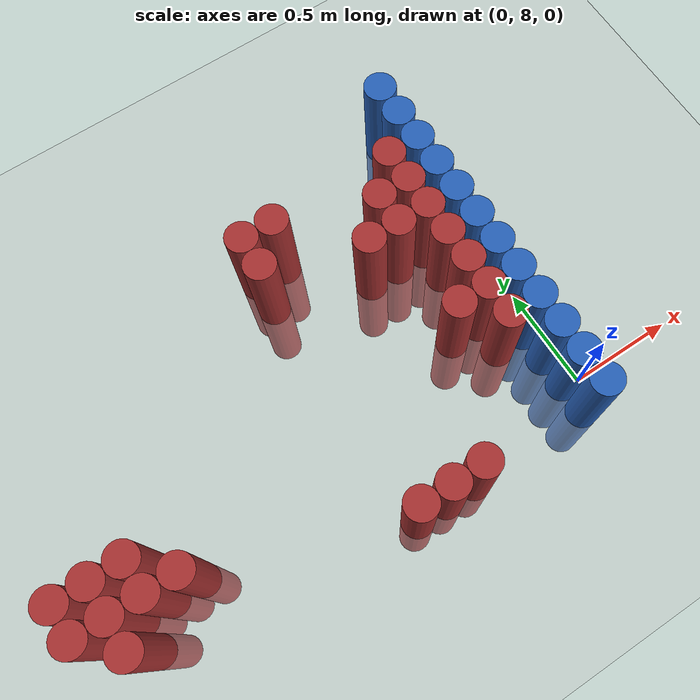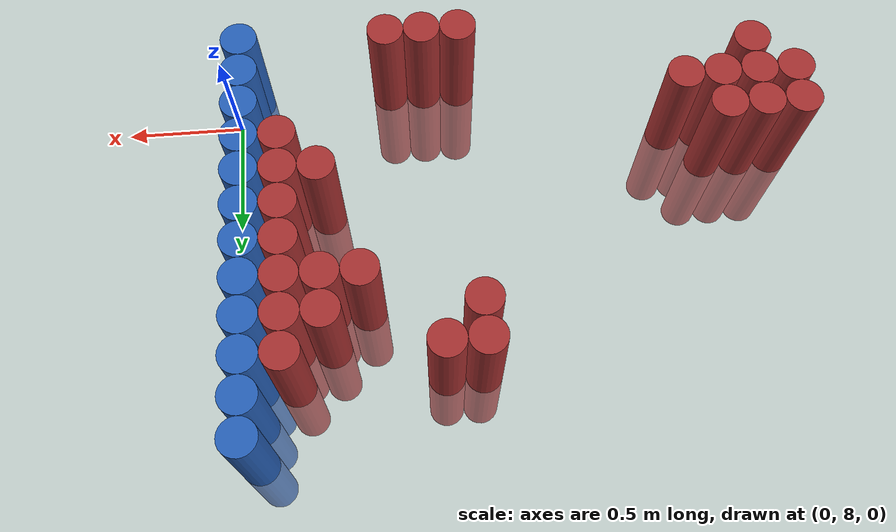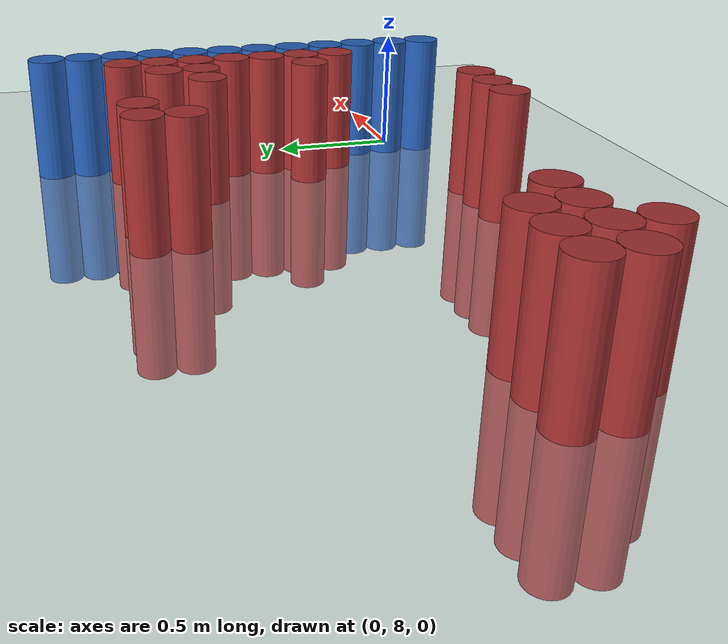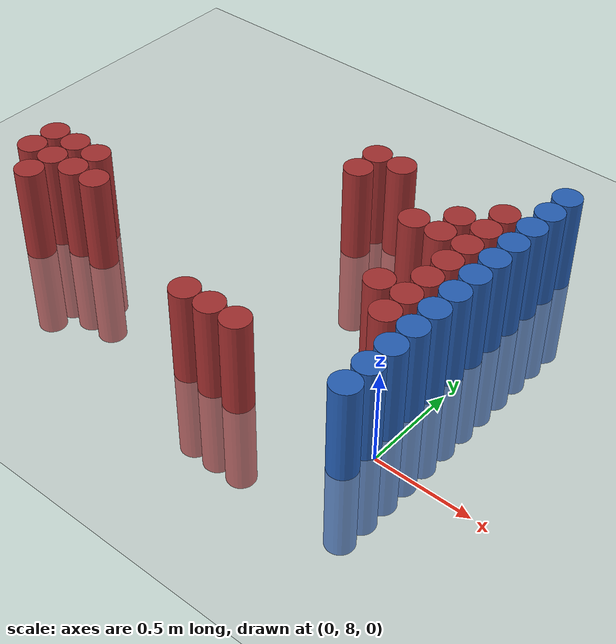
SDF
<sdf version="1.6">
 <world name="default">
  <model name="ground_plane">
   <static>1</static>
   <link name="link">
    <collision name="collision">
     <geometry><plane><normal>0 0 1</normal><size>100 100</size></plane></geometry>
     <surface><friction><ode><mu>100</mu><mu2>50</mu2></ode></friction></surface>
    </collision>
    <visual name="visual">
     <cast_shadows>0</cast_shadows>
     <geometry><plane><normal>0 0 1</normal><size>100 100</size></plane></geometry>
     <material>
      <script><uri>file://media/materials/scripts/gazebo.material</uri><name>Gazebo/Grey</name></script>
     </material>
    </visual>
   </link>
  </model>
  <model name="unit_cylinder_189">
   <static>1</static>
   <pose>-2.325000 8.175000 0.000000 0.000000 0.000000 0.000000</pose>
   <link name="link">
    <inertial>
     <mass>1</mass>
     <inertia><ixx>0.145833</ixx><ixy>0</ixy><ixz>0</ixz><iyy>0.145833</iyy><iyz>0</iyz><izz>0.125</izz></inertia>
    </inertial>
    <collision name="collision">
     <geometry><cylinder><radius>0.075000</radius><length>1</length></cylinder></geometry>
    </collision>
    <visual name="visual">
     <geometry><cylinder><radius>0.075000</radius><length>1</length></cylinder></geometry>
     <material>
      <ambient>0.648000 0.192000 0.192000 1</ambient>
      <diffuse>0.648000 0.192000 0.192000 1</diffuse>
     </material>
     <material>
      <script><name>Gazebo/Grey</name><uri>file://media/materials/scripts/gazebo.material</uri></script>
     </material>
    </visual>
    <sensor name="sensor_contact" type="contact"><contact><collision>collision</collision></contact></sensor>
   </link>
   <plugin filename="gz-sim-touchplugin-system" name="gz::sim::systems::TouchPlugin">
    <target>robot</target>
    <namespace>robot</namespace>
    <time>0.001</time>
    <enabled>true</enabled>
   </plugin>
  </model>
  <model name="unit_cylinder_190">
   <static>1</static>
   <pose>-2.325000 8.325000 0.000000 0.000000 0.000000 0.000000</pose>
   <link name="link">
    <inertial>
     <mass>1</mass>
     <inertia><ixx>0.145833</ixx><ixy>0</ixy><ixz>0</ixz><iyy>0.145833</iyy><iyz>0</iyz><izz>0.125</izz></inertia>
    </inertial>
    <collision name="collision">
     <geometry><cylinder><radius>0.075000</radius><length>1</length></cylinder></geometry>
    </collision>
    <visual name="visual">
     <geometry><cylinder><radius>0.075000</radius><length>1</length></cylinder></geometry>
     <material>
      <ambient>0.648000 0.192000 0.192000 1</ambient>
      <diffuse>0.648000 0.192000 0.192000 1</diffuse>
     </material>
     <material>
      <script><name>Gazebo/Grey</name><uri>file://media/materials/scripts/gazebo.material</uri></script>
     </material>
    </visual>
    <sensor name="sensor_contact" type="contact"><contact><collision>collision</collision></contact></sensor>
   </link>
   <plugin filename="gz-sim-touchplugin-system" name="gz::sim::systems::TouchPlugin">
    <target>robot</target>
    <namespace>robot</namespace>
    <time>0.001</time>
    <enabled>true</enabled>
   </plugin>
  </model>
  <model name="unit_cylinder_193">
   <static>1</static>
   <pose>-2.175000 8.025000 0.000000 0.000000 0.000000 0.000000</pose>
   <link name="link">
    <inertial>
     <mass>1</mass>
     <inertia><ixx>0.145833</ixx><ixy>0</ixy><ixz>0</ixz><iyy>0.145833</iyy><iyz>0</iyz><izz>0.125</izz></inertia>
    </inertial>
    <collision name="collision">
     <geometry><cylinder><radius>0.075000</radius><length>1</length></cylinder></geometry>
    </collision>
    <visual name="visual">
     <geometry><cylinder><radius>0.075000</radius><length>1</length></cylinder></geometry>
     <material>
      <ambient>0.648000 0.192000 0.192000 1</ambient>
      <diffuse>0.648000 0.192000 0.192000 1</diffuse>
     </material>
     <material>
      <script><name>Gazebo/Grey</name><uri>file://media/materials/scripts/gazebo.material</uri></script>
     </material>
    </visual>
    <sensor name="sensor_contact" type="contact"><contact><collision>collision</collision></contact></sensor>
   </link>
   <plugin filename="gz-sim-touchplugin-system" name="gz::sim::systems::TouchPlugin">
    <target>robot</target>
    <namespace>robot</namespace>
    <time>0.001</time>
    <enabled>true</enabled>
   </plugin>
  </model>
  <model name="unit_cylinder_194">
   <static>1</static>
   <pose>-2.175000 8.175000 0.000000 0.000000 0.000000 0.000000</pose>
   <link name="link">
    <inertial>
     <mass>1</mass>
     <inertia><ixx>0.145833</ixx><ixy>0</ixy><ixz>0</ixz><iyy>0.145833</iyy><iyz>0</iyz><izz>0.125</izz></inertia>
    </inertial>
    <collision name="collision">
     <geometry><cylinder><radius>0.075000</radius><length>1</length></cylinder></geometry>
    </collision>
    <visual name="visual">
     <geometry><cylinder><radius>0.075000</radius><length>1</length></cylinder></geometry>
     <material>
      <ambient>0.648000 0.192000 0.192000 1</ambient>
      <diffuse>0.648000 0.192000 0.192000 1</diffuse>
     </material>
     <material>
      <script><name>Gazebo/Grey</name><uri>file://media/materials/scripts/gazebo.material</uri></script>
     </material>
    </visual>
    <sensor name="sensor_contact" type="contact"><contact><collision>collision</collision></contact></sensor>
   </link>
   <plugin filename="gz-sim-touchplugin-system" name="gz::sim::systems::TouchPlugin">
    <target>robot</target>
    <namespace>robot</namespace>
    <time>0.001</time>
    <enabled>true</enabled>
   </plugin>
  </model>
  <model name="unit_cylinder_195">
   <static>1</static>
   <pose>-2.175000 8.325000 0.000000 0.000000 0.000000 0.000000</pose>
   <link name="link">
    <inertial>
     <mass>1</mass>
     <inertia><ixx>0.145833</ixx><ixy>0</ixy><ixz>0</ixz><iyy>0.145833</iyy><iyz>0</iyz><izz>0.125</izz></inertia>
    </inertial>
    <collision name="collision">
     <geometry><cylinder><radius>0.075000</radius><length>1</length></cylinder></geometry>
    </collision>
    <visual name="visual">
     <geometry><cylinder><radius>0.075000</radius><length>1</length></cylinder></geometry>
     <material>
      <ambient>0.648000 0.192000 0.192000 1</ambient>
      <diffuse>0.648000 0.192000 0.192000 1</diffuse>
     </material>
     <material>
      <script><name>Gazebo/Grey</name><uri>file://media/materials/scripts/gazebo.material</uri></script>
     </material>
    </visual>
    <sensor name="sensor_contact" type="contact"><contact><collision>collision</collision></contact></sensor>
   </link>
   <plugin filename="gz-sim-touchplugin-system" name="gz::sim::systems::TouchPlugin">
    <target>robot</target>
    <namespace>robot</namespace>
    <time>0.001</time>
    <enabled>true</enabled>
   </plugin>
  </model>
  <model name="unit_cylinder_198">
   <static>1</static>
   <pose>-2.025000 8.175000 0.000000 0.000000 0.000000 0.000000</pose>
   <link name="link">
    <inertial>
     <mass>1</mass>
     <inertia><ixx>0.145833</ixx><ixy>0</ixy><ixz>0</ixz><iyy>0.145833</iyy><iyz>0</iyz><izz>0.125</izz></inertia>
    </inertial>
    <collision name="collision">
     <geometry><cylinder><radius>0.075000</radius><length>1</length></cylinder></geometry>
    </collision>
    <visual name="visual">
     <geometry><cylinder><radius>0.075000</radius><length>1</length></cylinder></geometry>
     <material>
      <ambient>0.648000 0.192000 0.192000 1</ambient>
      <diffuse>0.648000 0.192000 0.192000 1</diffuse>
     </material>
     <material>
      <script><name>Gazebo/Grey</name><uri>file://media/materials/scripts/gazebo.material</uri></script>
     </material>
    </visual>
    <sensor name="sensor_contact" type="contact"><contact><collision>collision</collision></contact></sensor>
   </link>
   <plugin filename="gz-sim-touchplugin-system" name="gz::sim::systems::TouchPlugin">
    <target>robot</target>
    <namespace>robot</namespace>
    <time>0.001</time>
    <enabled>true</enabled>
   </plugin>
  </model>
  <model name="unit_cylinder_199">
   <static>1</static>
   <pose>-2.025000 8.325000 0.000000 0.000000 0.000000 0.000000</pose>
   <link name="link">
    <inertial>
     <mass>1</mass>
     <inertia><ixx>0.145833</ixx><ixy>0</ixy><ixz>0</ixz><iyy>0.145833</iyy><iyz>0</iyz><izz>0.125</izz></inertia>
    </inertial>
    <collision name="collision">
     <geometry><cylinder><radius>0.075000</radius><length>1</length></cylinder></geometry>
    </collision>
    <visual name="visual">
     <geometry><cylinder><radius>0.075000</radius><length>1</length></cylinder></geometry>
     <material>
      <ambient>0.648000 0.192000 0.192000 1</ambient>
      <diffuse>0.648000 0.192000 0.192000 1</diffuse>
     </material>
     <material>
      <script><name>Gazebo/Grey</name><uri>file://media/materials/scripts/gazebo.material</uri></script>
     </material>
    </visual>
    <sensor name="sensor_contact" type="contact"><contact><collision>collision</collision></contact></sensor>
   </link>
   <plugin filename="gz-sim-touchplugin-system" name="gz::sim::systems::TouchPlugin">
    <target>robot</target>
    <namespace>robot</namespace>
    <time>0.001</time>
    <enabled>true</enabled>
   </plugin>
  </model>
  <model name="unit_cylinder_203">
   <static>1</static>
   <pose>-1.875000 8.175000 0.000000 0.000000 0.000000 0.000000</pose>
   <link name="link">
    <inertial>
     <mass>1</mass>
     <inertia><ixx>0.145833</ixx><ixy>0</ixy><ixz>0</ixz><iyy>0.145833</iyy><iyz>0</iyz><izz>0.125</izz></inertia>
    </inertial>
    <collision name="collision">
     <geometry><cylinder><radius>0.075000</radius><length>1</length></cylinder></geometry>
    </collision>
    <visual name="visual">
     <geometry><cylinder><radius>0.075000</radius><length>1</length></cylinder></geometry>
     <material>
      <ambient>0.648000 0.192000 0.192000 1</ambient>
      <diffuse>0.648000 0.192000 0.192000 1</diffuse>
     </material>
     <material>
      <script><name>Gazebo/Grey</name><uri>file://media/materials/scripts/gazebo.material</uri></script>
     </material>
    </visual>
    <sensor name="sensor_contact" type="contact"><contact><collision>collision</collision></contact></sensor>
   </link>
   <plugin filename="gz-sim-touchplugin-system" name="gz::sim::systems::TouchPlugin">
    <target>robot</target>
    <namespace>robot</namespace>
    <time>0.001</time>
    <enabled>true</enabled>
   </plugin>
  </model>
  <model name="unit_cylinder_222">
   <static>1</static>
   <pose>-0.975000 7.875000 0.000000 0.000000 0.000000 0.000000</pose>
   <link name="link">
    <inertial>
     <mass>1</mass>
     <inertia><ixx>0.145833</ixx><ixy>0</ixy><ixz>0</ixz><iyy>0.145833</iyy><iyz>0</iyz><izz>0.125</izz></inertia>
    </inertial>
    <collision name="collision">
     <geometry><cylinder><radius>0.075000</radius><length>1</length></cylinder></geometry>
    </collision>
    <visual name="visual">
     <geometry><cylinder><radius>0.075000</radius><length>1</length></cylinder></geometry>
     <material>
      <ambient>0.648000 0.192000 0.192000 1</ambient>
      <diffuse>0.648000 0.192000 0.192000 1</diffuse>
     </material>
     <material>
      <script><name>Gazebo/Grey</name><uri>file://media/materials/scripts/gazebo.material</uri></script>
     </material>
    </visual>
    <sensor name="sensor_contact" type="contact"><contact><collision>collision</collision></contact></sensor>
   </link>
   <plugin filename="gz-sim-touchplugin-system" name="gz::sim::systems::TouchPlugin">
    <target>robot</target>
    <namespace>robot</namespace>
    <time>0.001</time>
    <enabled>true</enabled>
   </plugin>
  </model>
  <model name="unit_cylinder_223">
   <static>1</static>
   <pose>-0.975000 9.075000 0.000000 0.000000 0.000000 0.000000</pose>
   <link name="link">
    <inertial>
     <mass>1</mass>
     <inertia><ixx>0.145833</ixx><ixy>0</ixy><ixz>0</ixz><iyy>0.145833</iyy><iyz>0</iyz><izz>0.125</izz></inertia>
    </inertial>
    <collision name="collision">
     <geometry><cylinder><radius>0.075000</radius><length>1</length></cylinder></geometry>
    </collision>
    <visual name="visual">
     <geometry><cylinder><radius>0.075000</radius><length>1</length></cylinder></geometry>
     <material>
      <ambient>0.648000 0.192000 0.192000 1</ambient>
      <diffuse>0.648000 0.192000 0.192000 1</diffuse>
     </material>
     <material>
      <script><name>Gazebo/Grey</name><uri>file://media/materials/scripts/gazebo.material</uri></script>
     </material>
    </visual>
    <sensor name="sensor_contact" type="contact"><contact><collision>collision</collision></contact></sensor>
   </link>
   <plugin filename="gz-sim-touchplugin-system" name="gz::sim::systems::TouchPlugin">
    <target>robot</target>
    <namespace>robot</namespace>
    <time>0.001</time>
    <enabled>true</enabled>
   </plugin>
  </model>
  <model name="unit_cylinder_224">
   <static>1</static>
   <pose>-0.975000 9.225000 0.000000 0.000000 0.000000 0.000000</pose>
   <link name="link">
    <inertial>
     <mass>1</mass>
     <inertia><ixx>0.145833</ixx><ixy>0</ixy><ixz>0</ixz><iyy>0.145833</iyy><iyz>0</iyz><izz>0.125</izz></inertia>
    </inertial>
    <collision name="collision">
     <geometry><cylinder><radius>0.075000</radius><length>1</length></cylinder></geometry>
    </collision>
    <visual name="visual">
     <geometry><cylinder><radius>0.075000</radius><length>1</length></cylinder></geometry>
     <material>
      <ambient>0.648000 0.192000 0.192000 1</ambient>
      <diffuse>0.648000 0.192000 0.192000 1</diffuse>
     </material>
     <material>
      <script><name>Gazebo/Grey</name><uri>file://media/materials/scripts/gazebo.material</uri></script>
     </material>
    </visual>
    <sensor name="sensor_contact" type="contact"><contact><collision>collision</collision></contact></sensor>
   </link>
   <plugin filename="gz-sim-touchplugin-system" name="gz::sim::systems::TouchPlugin">
    <target>robot</target>
    <namespace>robot</namespace>
    <time>0.001</time>
    <enabled>true</enabled>
   </plugin>
  </model>
  <model name="unit_cylinder_226">
   <static>1</static>
   <pose>-0.825000 7.875000 0.000000 0.000000 0.000000 0.000000</pose>
   <link name="link">
    <inertial>
     <mass>1</mass>
     <inertia><ixx>0.145833</ixx><ixy>0</ixy><ixz>0</ixz><iyy>0.145833</iyy><iyz>0</iyz><izz>0.125</izz></inertia>
    </inertial>
    <collision name="collision">
     <geometry><cylinder><radius>0.075000</radius><length>1</length></cylinder></geometry>
    </collision>
    <visual name="visual">
     <geometry><cylinder><radius>0.075000</radius><length>1</length></cylinder></geometry>
     <material>
      <ambient>0.648000 0.192000 0.192000 1</ambient>
      <diffuse>0.648000 0.192000 0.192000 1</diffuse>
     </material>
     <material>
      <script><name>Gazebo/Grey</name><uri>file://media/materials/scripts/gazebo.material</uri></script>
     </material>
    </visual>
    <sensor name="sensor_contact" type="contact"><contact><collision>collision</collision></contact></sensor>
   </link>
   <plugin filename="gz-sim-touchplugin-system" name="gz::sim::systems::TouchPlugin">
    <target>robot</target>
    <namespace>robot</namespace>
    <time>0.001</time>
    <enabled>true</enabled>
   </plugin>
  </model>
  <model name="unit_cylinder_227">
   <static>1</static>
   <pose>-0.825000 9.225000 0.000000 0.000000 0.000000 0.000000</pose>
   <link name="link">
    <inertial>
     <mass>1</mass>
     <inertia><ixx>0.145833</ixx><ixy>0</ixy><ixz>0</ixz><iyy>0.145833</iyy><iyz>0</iyz><izz>0.125</izz></inertia>
    </inertial>
    <collision name="collision">
     <geometry><cylinder><radius>0.075000</radius><length>1</length></cylinder></geometry>
    </collision>
    <visual name="visual">
     <geometry><cylinder><radius>0.075000</radius><length>1</length></cylinder></geometry>
     <material>
      <ambient>0.648000 0.192000 0.192000 1</ambient>
      <diffuse>0.648000 0.192000 0.192000 1</diffuse>
     </material>
     <material>
      <script><name>Gazebo/Grey</name><uri>file://media/materials/scripts/gazebo.material</uri></script>
     </material>
    </visual>
    <sensor name="sensor_contact" type="contact"><contact><collision>collision</collision></contact></sensor>
   </link>
   <plugin filename="gz-sim-touchplugin-system" name="gz::sim::systems::TouchPlugin">
    <target>robot</target>
    <namespace>robot</namespace>
    <time>0.001</time>
    <enabled>true</enabled>
   </plugin>
  </model>
  <model name="unit_cylinder_231">
   <static>1</static>
   <pose>-0.675000 7.875000 0.000000 0.000000 0.000000 0.000000</pose>
   <link name="link">
    <inertial>
     <mass>1</mass>
     <inertia><ixx>0.145833</ixx><ixy>0</ixy><ixz>0</ixz><iyy>0.145833</iyy><iyz>0</iyz><izz>0.125</izz></inertia>
    </inertial>
    <collision name="collision">
     <geometry><cylinder><radius>0.075000</radius><length>1</length></cylinder></geometry>
    </collision>
    <visual name="visual">
     <geometry><cylinder><radius>0.075000</radius><length>1</length></cylinder></geometry>
     <material>
      <ambient>0.648000 0.192000 0.192000 1</ambient>
      <diffuse>0.648000 0.192000 0.192000 1</diffuse>
     </material>
     <material>
      <script><name>Gazebo/Grey</name><uri>file://media/materials/scripts/gazebo.material</uri></script>
     </material>
    </visual>
    <sensor name="sensor_contact" type="contact"><contact><collision>collision</collision></contact></sensor>
   </link>
   <plugin filename="gz-sim-touchplugin-system" name="gz::sim::systems::TouchPlugin">
    <target>robot</target>
    <namespace>robot</namespace>
    <time>0.001</time>
    <enabled>true</enabled>
   </plugin>
  </model>
  <model name="unit_cylinder_236">
   <static>1</static>
   <pose>-0.525000 8.925000 0.000000 0.000000 0.000000 0.000000</pose>
   <link name="link">
    <inertial>
     <mass>1</mass>
     <inertia><ixx>0.145833</ixx><ixy>0</ixy><ixz>0</ixz><iyy>0.145833</iyy><iyz>0</iyz><izz>0.125</izz></inertia>
    </inertial>
    <collision name="collision">
     <geometry><cylinder><radius>0.075000</radius><length>1</length></cylinder></geometry>
    </collision>
    <visual name="visual">
     <geometry><cylinder><radius>0.075000</radius><length>1</length></cylinder></geometry>
     <material>
      <ambient>0.648000 0.192000 0.192000 1</ambient>
      <diffuse>0.648000 0.192000 0.192000 1</diffuse>
     </material>
     <material>
      <script><name>Gazebo/Grey</name><uri>file://media/materials/scripts/gazebo.material</uri></script>
     </material>
    </visual>
    <sensor name="sensor_contact" type="contact"><contact><collision>collision</collision></contact></sensor>
   </link>
   <plugin filename="gz-sim-touchplugin-system" name="gz::sim::systems::TouchPlugin">
    <target>robot</target>
    <namespace>robot</namespace>
    <time>0.001</time>
    <enabled>true</enabled>
   </plugin>
  </model>
  <model name="unit_cylinder_242">
   <static>1</static>
   <pose>-0.375000 8.475000 0.000000 0.000000 0.000000 0.000000</pose>
   <link name="link">
    <inertial>
     <mass>1</mass>
     <inertia><ixx>0.145833</ixx><ixy>0</ixy><ixz>0</ixz><iyy>0.145833</iyy><iyz>0</iyz><izz>0.125</izz></inertia>
    </inertial>
    <collision name="collision">
     <geometry><cylinder><radius>0.075000</radius><length>1</length></cylinder></geometry>
    </collision>
    <visual name="visual">
     <geometry><cylinder><radius>0.075000</radius><length>1</length></cylinder></geometry>
     <material>
      <ambient>0.648000 0.192000 0.192000 1</ambient>
      <diffuse>0.648000 0.192000 0.192000 1</diffuse>
     </material>
     <material>
      <script><name>Gazebo/Grey</name><uri>file://media/materials/scripts/gazebo.material</uri></script>
     </material>
    </visual>
    <sensor name="sensor_contact" type="contact"><contact><collision>collision</collision></contact></sensor>
   </link>
   <plugin filename="gz-sim-touchplugin-system" name="gz::sim::systems::TouchPlugin">
    <target>robot</target>
    <namespace>robot</namespace>
    <time>0.001</time>
    <enabled>true</enabled>
   </plugin>
  </model>
  <model name="unit_cylinder_243">
   <static>1</static>
   <pose>-0.375000 8.925000 0.000000 0.000000 0.000000 0.000000</pose>
   <link name="link">
    <inertial>
     <mass>1</mass>
     <inertia><ixx>0.145833</ixx><ixy>0</ixy><ixz>0</ixz><iyy>0.145833</iyy><iyz>0</iyz><izz>0.125</izz></inertia>
    </inertial>
    <collision name="collision">
     <geometry><cylinder><radius>0.075000</radius><length>1</length></cylinder></geometry>
    </collision>
    <visual name="visual">
     <geometry><cylinder><radius>0.075000</radius><length>1</length></cylinder></geometry>
     <material>
      <ambient>0.648000 0.192000 0.192000 1</ambient>
      <diffuse>0.648000 0.192000 0.192000 1</diffuse>
     </material>
     <material>
      <script><name>Gazebo/Grey</name><uri>file://media/materials/scripts/gazebo.material</uri></script>
     </material>
    </visual>
    <sensor name="sensor_contact" type="contact"><contact><collision>collision</collision></contact></sensor>
   </link>
   <plugin filename="gz-sim-touchplugin-system" name="gz::sim::systems::TouchPlugin">
    <target>robot</target>
    <namespace>robot</namespace>
    <time>0.001</time>
    <enabled>true</enabled>
   </plugin>
  </model>
  <model name="unit_cylinder_244">
   <static>1</static>
   <pose>-0.375000 9.075000 0.000000 0.000000 0.000000 0.000000</pose>
   <link name="link">
    <inertial>
     <mass>1</mass>
     <inertia><ixx>0.145833</ixx><ixy>0</ixy><ixz>0</ixz><iyy>0.145833</iyy><iyz>0</iyz><izz>0.125</izz></inertia>
    </inertial>
    <collision name="collision">
     <geometry><cylinder><radius>0.075000</radius><length>1</length></cylinder></geometry>
    </collision>
    <visual name="visual">
     <geometry><cylinder><radius>0.075000</radius><length>1</length></cylinder></geometry>
     <material>
      <ambient>0.648000 0.192000 0.192000 1</ambient>
      <diffuse>0.648000 0.192000 0.192000 1</diffuse>
     </material>
     <material>
      <script><name>Gazebo/Grey</name><uri>file://media/materials/scripts/gazebo.material</uri></script>
     </material>
    </visual>
    <sensor name="sensor_contact" type="contact"><contact><collision>collision</collision></contact></sensor>
   </link>
   <plugin filename="gz-sim-touchplugin-system" name="gz::sim::systems::TouchPlugin">
    <target>robot</target>
    <namespace>robot</namespace>
    <time>0.001</time>
    <enabled>true</enabled>
   </plugin>
  </model>
  <model name="unit_cylinder_255">
   <static>1</static>
   <pose>-0.225000 8.325000 0.000000 0.000000 0.000000 0.000000</pose>
   <link name="link">
    <inertial>
     <mass>1</mass>
     <inertia><ixx>0.145833</ixx><ixy>0</ixy><ixz>0</ixz><iyy>0.145833</iyy><iyz>0</iyz><izz>0.125</izz></inertia>
    </inertial>
    <collision name="collision">
     <geometry><cylinder><radius>0.075000</radius><length>1</length></cylinder></geometry>
    </collision>
    <visual name="visual">
     <geometry><cylinder><radius>0.075000</radius><length>1</length></cylinder></geometry>
     <material>
      <ambient>0.648000 0.192000 0.192000 1</ambient>
      <diffuse>0.648000 0.192000 0.192000 1</diffuse>
     </material>
     <material>
      <script><name>Gazebo/Grey</name><uri>file://media/materials/scripts/gazebo.material</uri></script>
     </material>
    </visual>
    <sensor name="sensor_contact" type="contact"><contact><collision>collision</collision></contact></sensor>
   </link>
   <plugin filename="gz-sim-touchplugin-system" name="gz::sim::systems::TouchPlugin">
    <target>robot</target>
    <namespace>robot</namespace>
    <time>0.001</time>
    <enabled>true</enabled>
   </plugin>
  </model>
  <model name="unit_cylinder_256">
   <static>1</static>
   <pose>-0.225000 8.475000 0.000000 0.000000 0.000000 0.000000</pose>
   <link name="link">
    <inertial>
     <mass>1</mass>
     <inertia><ixx>0.145833</ixx><ixy>0</ixy><ixz>0</ixz><iyy>0.145833</iyy><iyz>0</iyz><izz>0.125</izz></inertia>
    </inertial>
    <collision name="collision">
     <geometry><cylinder><radius>0.075000</radius><length>1</length></cylinder></geometry>
    </collision>
    <visual name="visual">
     <geometry><cylinder><radius>0.075000</radius><length>1</length></cylinder></geometry>
     <material>
      <ambient>0.648000 0.192000 0.192000 1</ambient>
      <diffuse>0.648000 0.192000 0.192000 1</diffuse>
     </material>
     <material>
      <script><name>Gazebo/Grey</name><uri>file://media/materials/scripts/gazebo.material</uri></script>
     </material>
    </visual>
    <sensor name="sensor_contact" type="contact"><contact><collision>collision</collision></contact></sensor>
   </link>
   <plugin filename="gz-sim-touchplugin-system" name="gz::sim::systems::TouchPlugin">
    <target>robot</target>
    <namespace>robot</namespace>
    <time>0.001</time>
    <enabled>true</enabled>
   </plugin>
  </model>
  <model name="unit_cylinder_257">
   <static>1</static>
   <pose>-0.225000 8.625000 0.000000 0.000000 0.000000 0.000000</pose>
   <link name="link">
    <inertial>
     <mass>1</mass>
     <inertia><ixx>0.145833</ixx><ixy>0</ixy><ixz>0</ixz><iyy>0.145833</iyy><iyz>0</iyz><izz>0.125</izz></inertia>
    </inertial>
    <collision name="collision">
     <geometry><cylinder><radius>0.075000</radius><length>1</length></cylinder></geometry>
    </collision>
    <visual name="visual">
     <geometry><cylinder><radius>0.075000</radius><length>1</length></cylinder></geometry>
     <material>
      <ambient>0.648000 0.192000 0.192000 1</ambient>
      <diffuse>0.648000 0.192000 0.192000 1</diffuse>
     </material>
     <material>
      <script><name>Gazebo/Grey</name><uri>file://media/materials/scripts/gazebo.material</uri></script>
     </material>
    </visual>
    <sensor name="sensor_contact" type="contact"><contact><collision>collision</collision></contact></sensor>
   </link>
   <plugin filename="gz-sim-touchplugin-system" name="gz::sim::systems::TouchPlugin">
    <target>robot</target>
    <namespace>robot</namespace>
    <time>0.001</time>
    <enabled>true</enabled>
   </plugin>
  </model>
  <model name="unit_cylinder_258">
   <static>1</static>
   <pose>-0.225000 8.775000 0.000000 0.000000 0.000000 0.000000</pose>
   <link name="link">
    <inertial>
     <mass>1</mass>
     <inertia><ixx>0.145833</ixx><ixy>0</ixy><ixz>0</ixz><iyy>0.145833</iyy><iyz>0</iyz><izz>0.125</izz></inertia>
    </inertial>
    <collision name="collision">
     <geometry><cylinder><radius>0.075000</radius><length>1</length></cylinder></geometry>
    </collision>
    <visual name="visual">
     <geometry><cylinder><radius>0.075000</radius><length>1</length></cylinder></geometry>
     <material>
      <ambient>0.648000 0.192000 0.192000 1</ambient>
      <diffuse>0.648000 0.192000 0.192000 1</diffuse>
     </material>
     <material>
      <script><name>Gazebo/Grey</name><uri>file://media/materials/scripts/gazebo.material</uri></script>
     </material>
    </visual>
    <sensor name="sensor_contact" type="contact"><contact><collision>collision</collision></contact></sensor>
   </link>
   <plugin filename="gz-sim-touchplugin-system" name="gz::sim::systems::TouchPlugin">
    <target>robot</target>
    <namespace>robot</namespace>
    <time>0.001</time>
    <enabled>true</enabled>
   </plugin>
  </model>
  <model name="unit_cylinder_259">
   <static>1</static>
   <pose>-0.225000 8.925000 0.000000 0.000000 0.000000 0.000000</pose>
   <link name="link">
    <inertial>
     <mass>1</mass>
     <inertia><ixx>0.145833</ixx><ixy>0</ixy><ixz>0</ixz><iyy>0.145833</iyy><iyz>0</iyz><izz>0.125</izz></inertia>
    </inertial>
    <collision name="collision">
     <geometry><cylinder><radius>0.075000</radius><length>1</length></cylinder></geometry>
    </collision>
    <visual name="visual">
     <geometry><cylinder><radius>0.075000</radius><length>1</length></cylinder></geometry>
     <material>
      <ambient>0.648000 0.192000 0.192000 1</ambient>
      <diffuse>0.648000 0.192000 0.192000 1</diffuse>
     </material>
     <material>
      <script><name>Gazebo/Grey</name><uri>file://media/materials/scripts/gazebo.material</uri></script>
     </material>
    </visual>
    <sensor name="sensor_contact" type="contact"><contact><collision>collision</collision></contact></sensor>
   </link>
   <plugin filename="gz-sim-touchplugin-system" name="gz::sim::systems::TouchPlugin">
    <target>robot</target>
    <namespace>robot</namespace>
    <time>0.001</time>
    <enabled>true</enabled>
   </plugin>
  </model>
  <model name="unit_cylinder_260">
   <static>1</static>
   <pose>-0.225000 9.075000 0.000000 0.000000 0.000000 0.000000</pose>
   <link name="link">
    <inertial>
     <mass>1</mass>
     <inertia><ixx>0.145833</ixx><ixy>0</ixy><ixz>0</ixz><iyy>0.145833</iyy><iyz>0</iyz><izz>0.125</izz></inertia>
    </inertial>
    <collision name="collision">
     <geometry><cylinder><radius>0.075000</radius><length>1</length></cylinder></geometry>
    </collision>
    <visual name="visual">
     <geometry><cylinder><radius>0.075000</radius><length>1</length></cylinder></geometry>
     <material>
      <ambient>0.648000 0.192000 0.192000 1</ambient>
      <diffuse>0.648000 0.192000 0.192000 1</diffuse>
     </material>
     <material>
      <script><name>Gazebo/Grey</name><uri>file://media/materials/scripts/gazebo.material</uri></script>
     </material>
    </visual>
    <sensor name="sensor_contact" type="contact"><contact><collision>collision</collision></contact></sensor>
   </link>
   <plugin filename="gz-sim-touchplugin-system" name="gz::sim::systems::TouchPlugin">
    <target>robot</target>
    <namespace>robot</namespace>
    <time>0.001</time>
    <enabled>true</enabled>
   </plugin>
  </model>
  <model name="unit_cylinder_261">
   <static>1</static>
   <pose>-0.225000 9.225000 0.000000 0.000000 0.000000 0.000000</pose>
   <link name="link">
    <inertial>
     <mass>1</mass>
     <inertia><ixx>0.145833</ixx><ixy>0</ixy><ixz>0</ixz><iyy>0.145833</iyy><iyz>0</iyz><izz>0.125</izz></inertia>
    </inertial>
    <collision name="collision">
     <geometry><cylinder><radius>0.075000</radius><length>1</length></cylinder></geometry>
    </collision>
    <visual name="visual">
     <geometry><cylinder><radius>0.075000</radius><length>1</length></cylinder></geometry>
     <material>
      <ambient>0.648000 0.192000 0.192000 1</ambient>
      <diffuse>0.648000 0.192000 0.192000 1</diffuse>
     </material>
     <material>
      <script><name>Gazebo/Grey</name><uri>file://media/materials/scripts/gazebo.material</uri></script>
     </material>
    </visual>
    <sensor name="sensor_contact" type="contact"><contact><collision>collision</collision></contact></sensor>
   </link>
   <plugin filename="gz-sim-touchplugin-system" name="gz::sim::systems::TouchPlugin">
    <target>robot</target>
    <namespace>robot</namespace>
    <time>0.001</time>
    <enabled>true</enabled>
   </plugin>
  </model>
  <model name="unit_cylinder_280">
   <static>1</static>
   <pose>-0.075000 7.875000 0.000000 0.000000 0.000000 0.000000</pose>
   <link name="link">
    <inertial>
     <mass>1</mass>
     <inertia><ixx>0.145833</ixx><ixy>0</ixy><ixz>0</ixz><iyy>0.145833</iyy><iyz>0</iyz><izz>0.125</izz></inertia>
    </inertial>
    <collision name="collision">
     <geometry><cylinder><radius>0.075000</radius><length>1</length></cylinder></geometry>
    </collision>
    <visual name="visual">
     <geometry><cylinder><radius>0.075000</radius><length>1</length></cylinder></geometry>
     <material>
      <ambient>0.152000 0.379000 0.720000 1</ambient>
      <diffuse>0.152000 0.379000 0.720000 1</diffuse>
     </material>
     <material>
      <script><name>Gazebo/Grey</name><uri>file://media/materials/scripts/gazebo.material</uri></script>
     </material>
    </visual>
    <sensor name="sensor_contact" type="contact"><contact><collision>collision</collision></contact></sensor>
   </link>
   <plugin filename="gz-sim-touchplugin-system" name="gz::sim::systems::TouchPlugin">
    <target>robot</target>
    <namespace>robot</namespace>
    <time>0.001</time>
    <enabled>true</enabled>
   </plugin>
  </model>
  <model name="unit_cylinder_281">
   <static>1</static>
   <pose>-0.075000 8.025000 0.000000 0.000000 0.000000 0.000000</pose>
   <link name="link">
    <inertial>
     <mass>1</mass>
     <inertia><ixx>0.145833</ixx><ixy>0</ixy><ixz>0</ixz><iyy>0.145833</iyy><iyz>0</iyz><izz>0.125</izz></inertia>
    </inertial>
    <collision name="collision">
     <geometry><cylinder><radius>0.075000</radius><length>1</length></cylinder></geometry>
    </collision>
    <visual name="visual">
     <geometry><cylinder><radius>0.075000</radius><length>1</length></cylinder></geometry>
     <material>
      <ambient>0.152000 0.379000 0.720000 1</ambient>
      <diffuse>0.152000 0.379000 0.720000 1</diffuse>
     </material>
     <material>
      <script><name>Gazebo/Grey</name><uri>file://media/materials/scripts/gazebo.material</uri></script>
     </material>
    </visual>
    <sensor name="sensor_contact" type="contact"><contact><collision>collision</collision></contact></sensor>
   </link>
   <plugin filename="gz-sim-touchplugin-system" name="gz::sim::systems::TouchPlugin">
    <target>robot</target>
    <namespace>robot</namespace>
    <time>0.001</time>
    <enabled>true</enabled>
   </plugin>
  </model>
  <model name="unit_cylinder_282">
   <static>1</static>
   <pose>-0.075000 8.175000 0.000000 0.000000 0.000000 0.000000</pose>
   <link name="link">
    <inertial>
     <mass>1</mass>
     <inertia><ixx>0.145833</ixx><ixy>0</ixy><ixz>0</ixz><iyy>0.145833</iyy><iyz>0</iyz><izz>0.125</izz></inertia>
    </inertial>
    <collision name="collision">
     <geometry><cylinder><radius>0.075000</radius><length>1</length></cylinder></geometry>
    </collision>
    <visual name="visual">
     <geometry><cylinder><radius>0.075000</radius><length>1</length></cylinder></geometry>
     <material>
      <ambient>0.152000 0.379000 0.720000 1</ambient>
      <diffuse>0.152000 0.379000 0.720000 1</diffuse>
     </material>
     <material>
      <script><name>Gazebo/Grey</name><uri>file://media/materials/scripts/gazebo.material</uri></script>
     </material>
    </visual>
    <sensor name="sensor_contact" type="contact"><contact><collision>collision</collision></contact></sensor>
   </link>
   <plugin filename="gz-sim-touchplugin-system" name="gz::sim::systems::TouchPlugin">
    <target>robot</target>
    <namespace>robot</namespace>
    <time>0.001</time>
    <enabled>true</enabled>
   </plugin>
  </model>
  <model name="unit_cylinder_283">
   <static>1</static>
   <pose>-0.075000 8.325000 0.000000 0.000000 0.000000 0.000000</pose>
   <link name="link">
    <inertial>
     <mass>1</mass>
     <inertia><ixx>0.145833</ixx><ixy>0</ixy><ixz>0</ixz><iyy>0.145833</iyy><iyz>0</iyz><izz>0.125</izz></inertia>
    </inertial>
    <collision name="collision">
     <geometry><cylinder><radius>0.075000</radius><length>1</length></cylinder></geometry>
    </collision>
    <visual name="visual">
     <geometry><cylinder><radius>0.075000</radius><length>1</length></cylinder></geometry>
     <material>
      <ambient>0.152000 0.379000 0.720000 1</ambient>
      <diffuse>0.152000 0.379000 0.720000 1</diffuse>
     </material>
     <material>
      <script><name>Gazebo/Grey</name><uri>file://media/materials/scripts/gazebo.material</uri></script>
     </material>
    </visual>
    <sensor name="sensor_contact" type="contact"><contact><collision>collision</collision></contact></sensor>
   </link>
   <plugin filename="gz-sim-touchplugin-system" name="gz::sim::systems::TouchPlugin">
    <target>robot</target>
    <namespace>robot</namespace>
    <time>0.001</time>
    <enabled>true</enabled>
   </plugin>
  </model>
  <model name="unit_cylinder_284">
   <static>1</static>
   <pose>-0.075000 8.475000 0.000000 0.000000 0.000000 0.000000</pose>
   <link name="link">
    <inertial>
     <mass>1</mass>
     <inertia><ixx>0.145833</ixx><ixy>0</ixy><ixz>0</ixz><iyy>0.145833</iyy><iyz>0</iyz><izz>0.125</izz></inertia>
    </inertial>
    <collision name="collision">
     <geometry><cylinder><radius>0.075000</radius><length>1</length></cylinder></geometry>
    </collision>
    <visual name="visual">
     <geometry><cylinder><radius>0.075000</radius><length>1</length></cylinder></geometry>
     <material>
      <ambient>0.152000 0.379000 0.720000 1</ambient>
      <diffuse>0.152000 0.379000 0.720000 1</diffuse>
     </material>
     <material>
      <script><name>Gazebo/Grey</name><uri>file://media/materials/scripts/gazebo.material</uri></script>
     </material>
    </visual>
    <sensor name="sensor_contact" type="contact"><contact><collision>collision</collision></contact></sensor>
   </link>
   <plugin filename="gz-sim-touchplugin-system" name="gz::sim::systems::TouchPlugin">
    <target>robot</target>
    <namespace>robot</namespace>
    <time>0.001</time>
    <enabled>true</enabled>
   </plugin>
  </model>
  <model name="unit_cylinder_285">
   <static>1</static>
   <pose>-0.075000 8.625000 0.000000 0.000000 0.000000 0.000000</pose>
   <link name="link">
    <inertial>
     <mass>1</mass>
     <inertia><ixx>0.145833</ixx><ixy>0</ixy><ixz>0</ixz><iyy>0.145833</iyy><iyz>0</iyz><izz>0.125</izz></inertia>
    </inertial>
    <collision name="collision">
     <geometry><cylinder><radius>0.075000</radius><length>1</length></cylinder></geometry>
    </collision>
    <visual name="visual">
     <geometry><cylinder><radius>0.075000</radius><length>1</length></cylinder></geometry>
     <material>
      <ambient>0.152000 0.379000 0.720000 1</ambient>
      <diffuse>0.152000 0.379000 0.720000 1</diffuse>
     </material>
     <material>
      <script><name>Gazebo/Grey</name><uri>file://media/materials/scripts/gazebo.material</uri></script>
     </material>
    </visual>
    <sensor name="sensor_contact" type="contact"><contact><collision>collision</collision></contact></sensor>
   </link>
   <plugin filename="gz-sim-touchplugin-system" name="gz::sim::systems::TouchPlugin">
    <target>robot</target>
    <namespace>robot</namespace>
    <time>0.001</time>
    <enabled>true</enabled>
   </plugin>
  </model>
  <model name="unit_cylinder_286">
   <static>1</static>
   <pose>-0.075000 8.775000 0.000000 0.000000 0.000000 0.000000</pose>
   <link name="link">
    <inertial>
     <mass>1</mass>
     <inertia><ixx>0.145833</ixx><ixy>0</ixy><ixz>0</ixz><iyy>0.145833</iyy><iyz>0</iyz><izz>0.125</izz></inertia>
    </inertial>
    <collision name="collision">
     <geometry><cylinder><radius>0.075000</radius><length>1</length></cylinder></geometry>
    </collision>
    <visual name="visual">
     <geometry><cylinder><radius>0.075000</radius><length>1</length></cylinder></geometry>
     <material>
      <ambient>0.152000 0.379000 0.720000 1</ambient>
      <diffuse>0.152000 0.379000 0.720000 1</diffuse>
     </material>
     <material>
      <script><name>Gazebo/Grey</name><uri>file://media/materials/scripts/gazebo.material</uri></script>
     </material>
    </visual>
    <sensor name="sensor_contact" type="contact"><contact><collision>collision</collision></contact></sensor>
   </link>
   <plugin filename="gz-sim-touchplugin-system" name="gz::sim::systems::TouchPlugin">
    <target>robot</target>
    <namespace>robot</namespace>
    <time>0.001</time>
    <enabled>true</enabled>
   </plugin>
  </model>
  <model name="unit_cylinder_287">
   <static>1</static>
   <pose>-0.075000 8.925000 0.000000 0.000000 0.000000 0.000000</pose>
   <link name="link">
    <inertial>
     <mass>1</mass>
     <inertia><ixx>0.145833</ixx><ixy>0</ixy><ixz>0</ixz><iyy>0.145833</iyy><iyz>0</iyz><izz>0.125</izz></inertia>
    </inertial>
    <collision name="collision">
     <geometry><cylinder><radius>0.075000</radius><length>1</length></cylinder></geometry>
    </collision>
    <visual name="visual">
     <geometry><cylinder><radius>0.075000</radius><length>1</length></cylinder></geometry>
     <material>
      <ambient>0.152000 0.379000 0.720000 1</ambient>
      <diffuse>0.152000 0.379000 0.720000 1</diffuse>
     </material>
     <material>
      <script><name>Gazebo/Grey</name><uri>file://media/materials/scripts/gazebo.material</uri></script>
     </material>
    </visual>
    <sensor name="sensor_contact" type="contact"><contact><collision>collision</collision></contact></sensor>
   </link>
   <plugin filename="gz-sim-touchplugin-system" name="gz::sim::systems::TouchPlugin">
    <target>robot</target>
    <namespace>robot</namespace>
    <time>0.001</time>
    <enabled>true</enabled>
   </plugin>
  </model>
  <model name="unit_cylinder_288">
   <static>1</static>
   <pose>-0.075000 9.075000 0.000000 0.000000 0.000000 0.000000</pose>
   <link name="link">
    <inertial>
     <mass>1</mass>
     <inertia><ixx>0.145833</ixx><ixy>0</ixy><ixz>0</ixz><iyy>0.145833</iyy><iyz>0</iyz><izz>0.125</izz></inertia>
    </inertial>
    <collision name="collision">
     <geometry><cylinder><radius>0.075000</radius><length>1</length></cylinder></geometry>
    </collision>
    <visual name="visual">
     <geometry><cylinder><radius>0.075000</radius><length>1</length></cylinder></geometry>
     <material>
      <ambient>0.152000 0.379000 0.720000 1</ambient>
      <diffuse>0.152000 0.379000 0.720000 1</diffuse>
     </material>
     <material>
      <script><name>Gazebo/Grey</name><uri>file://media/materials/scripts/gazebo.material</uri></script>
     </material>
    </visual>
    <sensor name="sensor_contact" type="contact"><contact><collision>collision</collision></contact></sensor>
   </link>
   <plugin filename="gz-sim-touchplugin-system" name="gz::sim::systems::TouchPlugin">
    <target>robot</target>
    <namespace>robot</namespace>
    <time>0.001</time>
    <enabled>true</enabled>
   </plugin>
  </model>
  <model name="unit_cylinder_289">
   <static>1</static>
   <pose>-0.075000 9.225000 0.000000 0.000000 0.000000 0.000000</pose>
   <link name="link">
    <inertial>
     <mass>1</mass>
     <inertia><ixx>0.145833</ixx><ixy>0</ixy><ixz>0</ixz><iyy>0.145833</iyy><iyz>0</iyz><izz>0.125</izz></inertia>
    </inertial>
    <collision name="collision">
     <geometry><cylinder><radius>0.075000</radius><length>1</length></cylinder></geometry>
    </collision>
    <visual name="visual">
     <geometry><cylinder><radius>0.075000</radius><length>1</length></cylinder></geometry>
     <material>
      <ambient>0.152000 0.379000 0.720000 1</ambient>
      <diffuse>0.152000 0.379000 0.720000 1</diffuse>
     </material>
     <material>
      <script><name>Gazebo/Grey</name><uri>file://media/materials/scripts/gazebo.material</uri></script>
     </material>
    </visual>
    <sensor name="sensor_contact" type="contact"><contact><collision>collision</collision></contact></sensor>
   </link>
   <plugin filename="gz-sim-touchplugin-system" name="gz::sim::systems::TouchPlugin">
    <target>robot</target>
    <namespace>robot</namespace>
    <time>0.001</time>
    <enabled>true</enabled>
   </plugin>
  </model>
  <model name="unit_cylinder_290">
   <static>1</static>
   <pose>-0.075000 9.375000 0.000000 0.000000 0.000000 0.000000</pose>
   <link name="link">
    <inertial>
     <mass>1</mass>
     <inertia><ixx>0.145833</ixx><ixy>0</ixy><ixz>0</ixz><iyy>0.145833</iyy><iyz>0</iyz><izz>0.125</izz></inertia>
    </inertial>
    <collision name="collision">
     <geometry><cylinder><radius>0.075000</radius><length>1</length></cylinder></geometry>
    </collision>
    <visual name="visual">
     <geometry><cylinder><radius>0.075000</radius><length>1</length></cylinder></geometry>
     <material>
      <ambient>0.152000 0.379000 0.720000 1</ambient>
      <diffuse>0.152000 0.379000 0.720000 1</diffuse>
     </material>
     <material>
      <script><name>Gazebo/Grey</name><uri>file://media/materials/scripts/gazebo.material</uri></script>
     </material>
    </visual>
    <sensor name="sensor_contact" type="contact"><contact><collision>collision</collision></contact></sensor>
   </link>
   <plugin filename="gz-sim-touchplugin-system" name="gz::sim::systems::TouchPlugin">
    <target>robot</target>
    <namespace>robot</namespace>
    <time>0.001</time>
    <enabled>true</enabled>
   </plugin>
  </model>
  <model name="unit_cylinder_291">
   <static>1</static>
   <pose>-0.075000 9.525000 0.000000 0.000000 0.000000 0.000000</pose>
   <link name="link">
    <inertial>
     <mass>1</mass>
     <inertia><ixx>0.145833</ixx><ixy>0</ixy><ixz>0</ixz><iyy>0.145833</iyy><iyz>0</iyz><izz>0.125</izz></inertia>
    </inertial>
    <collision name="collision">
     <geometry><cylinder><radius>0.075000</radius><length>1</length></cylinder></geometry>
    </collision>
    <visual name="visual">
     <geometry><cylinder><radius>0.075000</radius><length>1</length></cylinder></geometry>
     <material>
      <ambient>0.152000 0.379000 0.720000 1</ambient>
      <diffuse>0.152000 0.379000 0.720000 1</diffuse>
     </material>
     <material>
      <script><name>Gazebo/Grey</name><uri>file://media/materials/scripts/gazebo.material</uri></script>
     </material>
    </visual>
    <sensor name="sensor_contact" type="contact"><contact><collision>collision</collision></contact></sensor>
   </link>
   <plugin filename="gz-sim-touchplugin-system" name="gz::sim::systems::TouchPlugin">
    <target>robot</target>
    <namespace>robot</namespace>
    <time>0.001</time>
    <enabled>true</enabled>
   </plugin>
  </model>
 </world>
</sdf>
